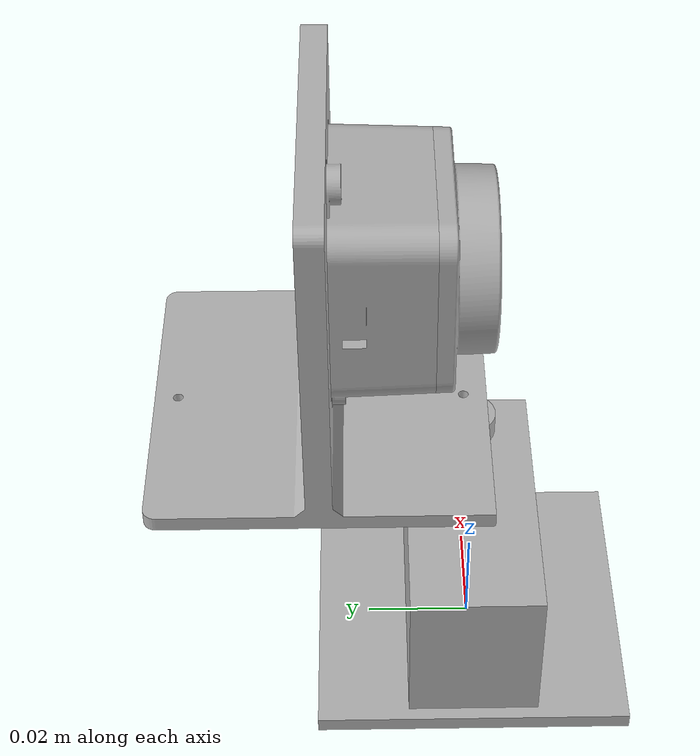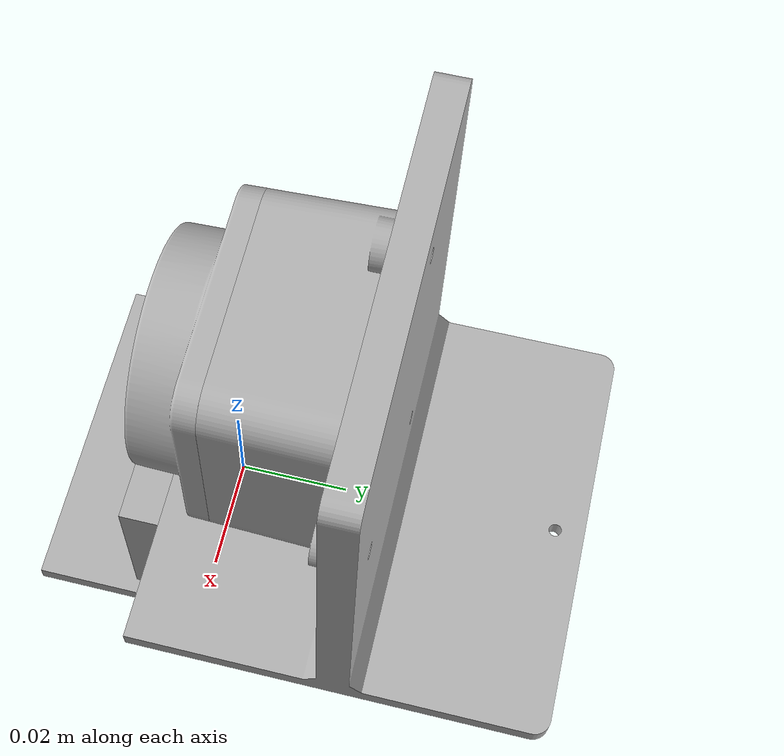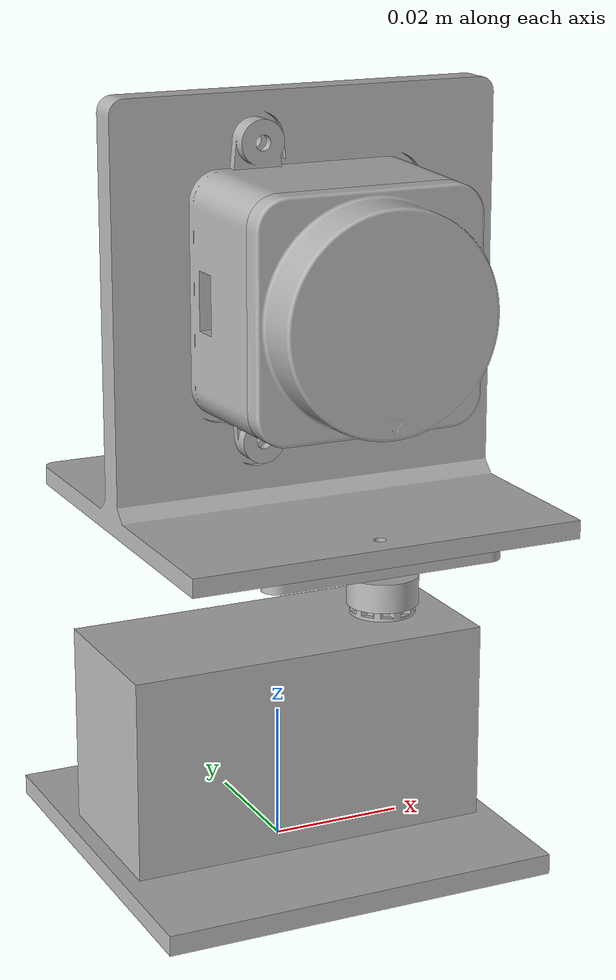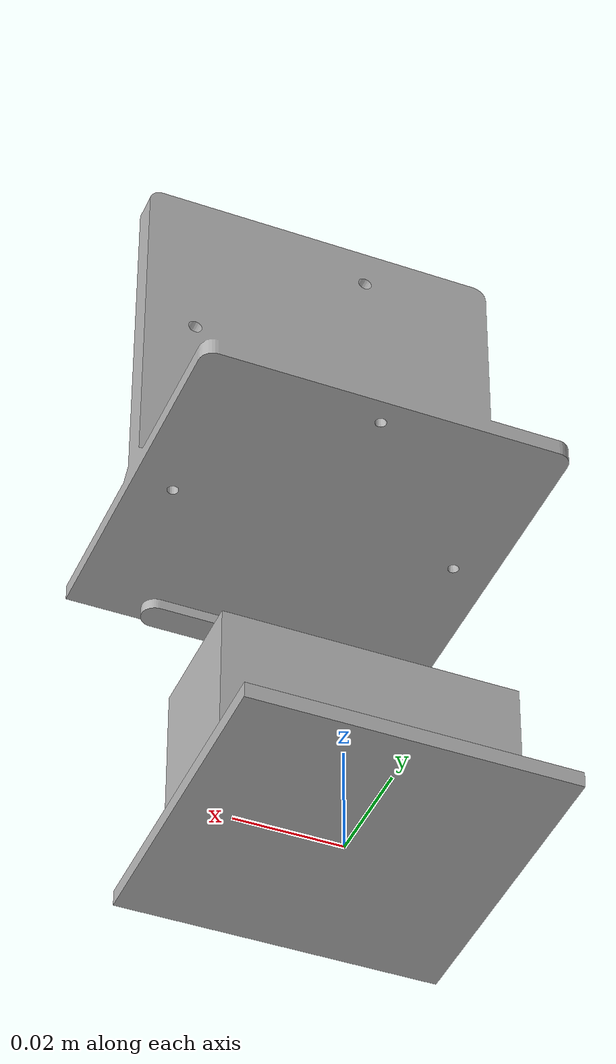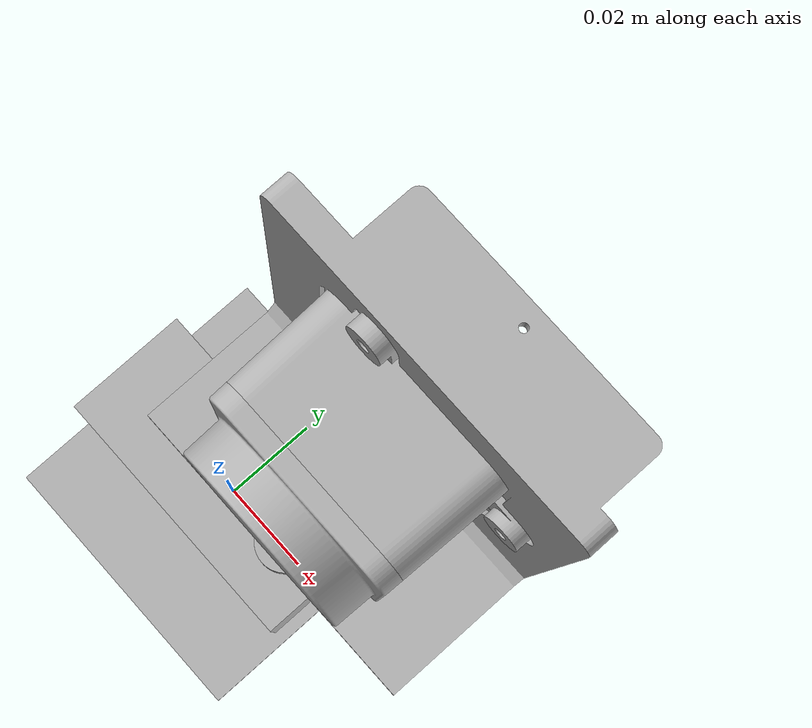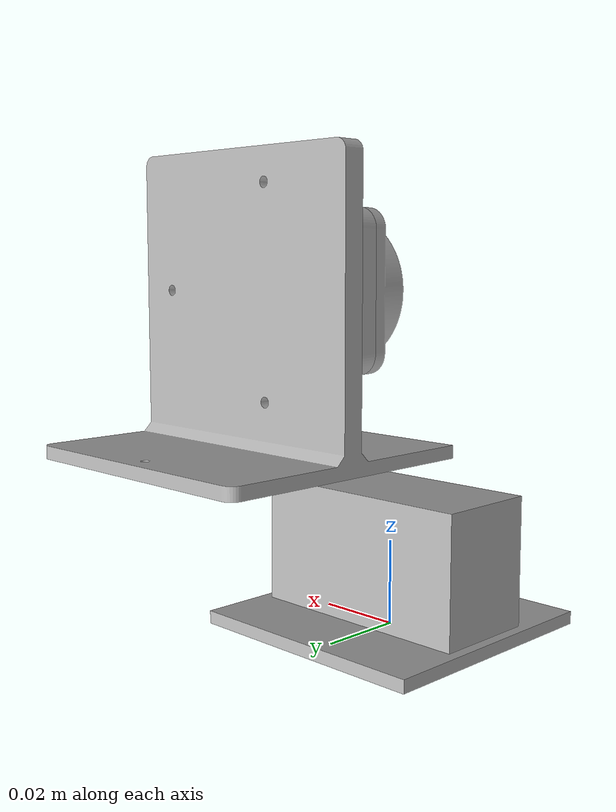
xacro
<?xml version="1.0" ?>
<robot name="lidar_perpendicular" xmlns:xacro="http://www.ros.org/wiki/xacro">

<xacro:include filename="$(find lidar_perpendicular_description)/urdf/materials.xacro" />
<xacro:include filename="$(find lidar_perpendicular_description)/urdf/lidar_perpendicular.trans" />
<xacro:include filename="$(find lidar_perpendicular_description)/urdf/lidar_perpendicular.gazebo" />
<link name="base_link">
  <inertial>
    <origin xyz="0.0 1.3158198810372226e-17 0.0015000000000000002" rpy="0 0 0"/>
    <mass value="0.011447999999999998"/>
    <inertia ixx="3e-06" iyy="3e-06" izz="7e-06" ixy="0.0" iyz="0.0" ixz="-0.0"/>
  </inertial>
  <visual>
    <origin xyz="0 0 0" rpy="0 0 0"/>
    <geometry>
      <mesh filename="package://lidar_perpendicular_description/meshes/base_link.stl" scale="0.001 0.001 0.001"/>
    </geometry>
    <material name="silver"/>
  </visual>
  <collision>
    <origin xyz="0 0 0" rpy="0 0 0"/>
    <geometry>
      <mesh filename="package://lidar_perpendicular_description/meshes/base_link.stl" scale="0.001 0.001 0.001"/>
    </geometry>
  </collision>
</link>

<link name="servo_body_1">
  <inertial>
    <origin xyz="-3.332055650750272e-07 0.0 0.01499971449043154" rpy="0 0 0"/>
    <mass value="0.0437241674779468"/>
    <inertia ixx="6e-06" iyy="1.4e-05" izz="1.3e-05" ixy="-0.0" iyz="0.0" ixz="0.0"/>
  </inertial>
  <visual>
    <origin xyz="-0.0 -0.0 -0.003" rpy="0 0 0"/>
    <geometry>
      <mesh filename="package://lidar_perpendicular_description/meshes/servo_body_1.stl" scale="0.001 0.001 0.001"/>
    </geometry>
    <material name="silver"/>
  </visual>
  <collision>
    <origin xyz="-0.0 -0.0 -0.003" rpy="0 0 0"/>
    <geometry>
      <mesh filename="package://lidar_perpendicular_description/meshes/servo_body_1.stl" scale="0.001 0.001 0.001"/>
    </geometry>
  </collision>
</link>

<link name="servo_gear_1">
  <inertial>
    <origin xyz="-3.469446951953614e-18 1.544655055131038e-17 0.0024464650804202903" rpy="0 0 0"/>
    <mass value="0.0003428444305329218"/>
    <inertia ixx="0.0" iyy="0.0" izz="0.0" ixy="0.0" iyz="0.0" ixz="-0.0"/>
  </inertial>
  <visual>
    <origin xyz="-0.0175 -0.0 -0.03299" rpy="0 0 0"/>
    <geometry>
      <mesh filename="package://lidar_perpendicular_description/meshes/servo_gear_1.stl" scale="0.001 0.001 0.001"/>
    </geometry>
    <material name="silver"/>
  </visual>
  <collision>
    <origin xyz="-0.0175 -0.0 -0.03299" rpy="0 0 0"/>
    <geometry>
      <mesh filename="package://lidar_perpendicular_description/meshes/servo_gear_1.stl" scale="0.001 0.001 0.001"/>
    </geometry>
  </collision>
</link>

<link name="servo_horn_1">
  <inertial>
    <origin xyz="1.734723475976807e-17 1.622771598673635e-17 0.0011279052134674158" rpy="0 0 0"/>
    <mass value="0.000616421279497907"/>
    <inertia ixx="0.0" iyy="0.0" izz="0.0" ixy="0.0" iyz="0.0" ixz="0.0"/>
  </inertial>
  <visual>
    <origin xyz="-0.0175 -0.0 -0.03799" rpy="0 0 0"/>
    <geometry>
      <mesh filename="package://lidar_perpendicular_description/meshes/servo_horn_1.stl" scale="0.001 0.001 0.001"/>
    </geometry>
    <material name="silver"/>
  </visual>
  <collision>
    <origin xyz="-0.0175 -0.0 -0.03799" rpy="0 0 0"/>
    <geometry>
      <mesh filename="package://lidar_perpendicular_description/meshes/servo_horn_1.stl" scale="0.001 0.001 0.001"/>
    </geometry>
  </collision>
</link>

<link name="lidar_mount_1">
  <inertial>
    <origin xyz="-9.940409349276647e-06 0.02905322288108601 0.021791326095285155" rpy="0 0 0"/>
    <mass value="0.034066519533003985"/>
    <inertia ixx="2.2e-05" iyy="2.9e-05" izz="1.7e-05" ixy="-0.0" iyz="-0.0" ixz="0.0"/>
  </inertial>
  <visual>
    <origin xyz="-0.0175 -0.0 -0.04098" rpy="0 0 0"/>
    <geometry>
      <mesh filename="package://lidar_perpendicular_description/meshes/lidar_mount_1.stl" scale="0.001 0.001 0.001"/>
    </geometry>
    <material name="silver"/>
  </visual>
  <collision>
    <origin xyz="-0.0175 -0.0 -0.04098" rpy="0 0 0"/>
    <geometry>
      <mesh filename="package://lidar_perpendicular_description/meshes/lidar_mount_1.stl" scale="0.001 0.001 0.001"/>
    </geometry>
  </collision>
</link>

<link name="lidar_base_1">
  <inertial>
    <origin xyz="-0.0037433006765159593 -0.009876364212401345 -4.992205079878964e-09" rpy="0 0 0"/>
    <mass value="0.030748489817916343"/>
    <inertia ixx="5e-06" iyy="7e-06" izz="5e-06" ixy="-0.0" iyz="-0.0" ixz="-0.0"/>
  </inertial>
  <visual>
    <origin xyz="-0.021226 -0.02745 -0.07799" rpy="0 0 0"/>
    <geometry>
      <mesh filename="package://lidar_perpendicular_description/meshes/lidar_base_1.stl" scale="0.001 0.001 0.001"/>
    </geometry>
    <material name="silver"/>
  </visual>
  <collision>
    <origin xyz="-0.021226 -0.02745 -0.07799" rpy="0 0 0"/>
    <geometry>
      <mesh filename="package://lidar_perpendicular_description/meshes/lidar_base_1.stl" scale="0.001 0.001 0.001"/>
    </geometry>
  </collision>
</link>

<link name="lidar_1">
  <inertial>
    <origin xyz="-1.5744538192641322e-07 -0.005109330306681065 7.277157430957137e-07" rpy="0 0 0"/>
    <mass value="0.012917217120314307"/>
    <inertia ixx="1e-06" iyy="2e-06" izz="1e-06" ixy="-0.0" iyz="0.0" ixz="0.0"/>
  </inertial>
  <visual>
    <origin xyz="-0.017403 -0.00735 -0.07799" rpy="0 0 0"/>
    <geometry>
      <mesh filename="package://lidar_perpendicular_description/meshes/lidar_1.stl" scale="0.001 0.001 0.001"/>
    </geometry>
    <material name="silver"/>
  </visual>
  <collision>
    <origin xyz="-0.017403 -0.00735 -0.07799" rpy="0 0 0"/>
    <geometry>
      <mesh filename="package://lidar_perpendicular_description/meshes/lidar_1.stl" scale="0.001 0.001 0.001"/>
    </geometry>
  </collision>
</link>

<joint name="servo_body_joint" type="fixed">
  <origin xyz="0.0 0.0 0.003" rpy="0 0 0"/>
  <parent link="base_link"/>
  <child link="servo_body_1"/>
</joint>

<joint name="servo_gear_joint" type="revolute">
  <origin xyz="0.0175 0.0 0.02999" rpy="0 0 0"/>
  <parent link="servo_body_1"/>
  <child link="servo_gear_1"/>
  <axis xyz="0.0 0.0 1.0"/>
  <limit upper="3.141593" lower="0.0" effort="100" velocity="100"/>
</joint>

<joint name="servo_horn_joint" type="fixed">
  <origin xyz="0.0 0.0 0.005" rpy="0 0 0"/>
  <parent link="servo_gear_1"/>
  <child link="servo_horn_1"/>
</joint>

<joint name="lidar_mount_joint" type="fixed">
  <origin xyz="0.0 0.0 0.00299" rpy="0 0 0"/>
  <parent link="servo_horn_1"/>
  <child link="lidar_mount_1"/>
</joint>

<joint name="lidar_base_joint" type="fixed">
  <origin xyz="0.003726 0.02745 0.03701" rpy="0 0 0"/>
  <parent link="lidar_mount_1"/>
  <child link="lidar_base_1"/>
</joint>

<joint name="lidar_joint" type="fixed">
  <origin xyz="-0.003823 -0.0201 0.0" rpy="0 0 0"/>
  <parent link="lidar_base_1"/>
  <child link="lidar_1"/>
</joint>

</robot>

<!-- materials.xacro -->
<robot name="lidar_perpendicular" xmlns:xacro="http://www.ros.org/wiki/xacro" >

<material name="silver">
  <color rgba="0.700 0.700 0.700 1.000"/>
</material>

</robot>

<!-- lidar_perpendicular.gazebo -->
<robot name="lidar_perpendicular" xmlns:xacro="http://www.ros.org/wiki/xacro" >

<xacro:property name="body_color" value="Gazebo/Silver" />
<xacro:property name="lidar_color" value="Gazebo/Black" />

<gazebo>
  <plugin name="control" filename="libgazebo_ros_control.so"/>
</gazebo>
<gazebo reference="base_link">
  <material>${body_color}</material>
  <mu1>0.2</mu1>
  <mu2>0.2</mu2>
  <selfCollide>true</selfCollide>
  <gravity>true</gravity>
</gazebo>

<gazebo reference="servo_body_1">
  <material>${body_color}</material>
  <mu1>0.2</mu1>
  <mu2>0.2</mu2>
  <selfCollide>true</selfCollide>
</gazebo>

<gazebo reference="servo_gear_1">
  <material>${body_color}</material>
  <mu1>0.2</mu1>
  <mu2>0.2</mu2>
  <selfCollide>true</selfCollide>
</gazebo>

<gazebo reference="servo_horn_1">
  <material>${body_color}</material>
  <mu1>0.2</mu1>
  <mu2>0.2</mu2>
  <selfCollide>true</selfCollide>
</gazebo>

<gazebo reference="lidar_mount_1">
  <material>${body_color}</material>
  <mu1>0.2</mu1>
  <mu2>0.2</mu2>
  <selfCollide>true</selfCollide>
</gazebo>

<gazebo reference="lidar_base_1">
  <material>${lidar_color}</material>
  <mu1>0.2</mu1>
  <mu2>0.2</mu2>
  <selfCollide>true</selfCollide>
</gazebo>

<gazebo reference="lidar_1">
  <material>${lidar_color}</material>
  <mu1>0.2</mu1>
  <mu2>0.2</mu2>
  <selfCollide>true</selfCollide>
</gazebo>

</robot>
